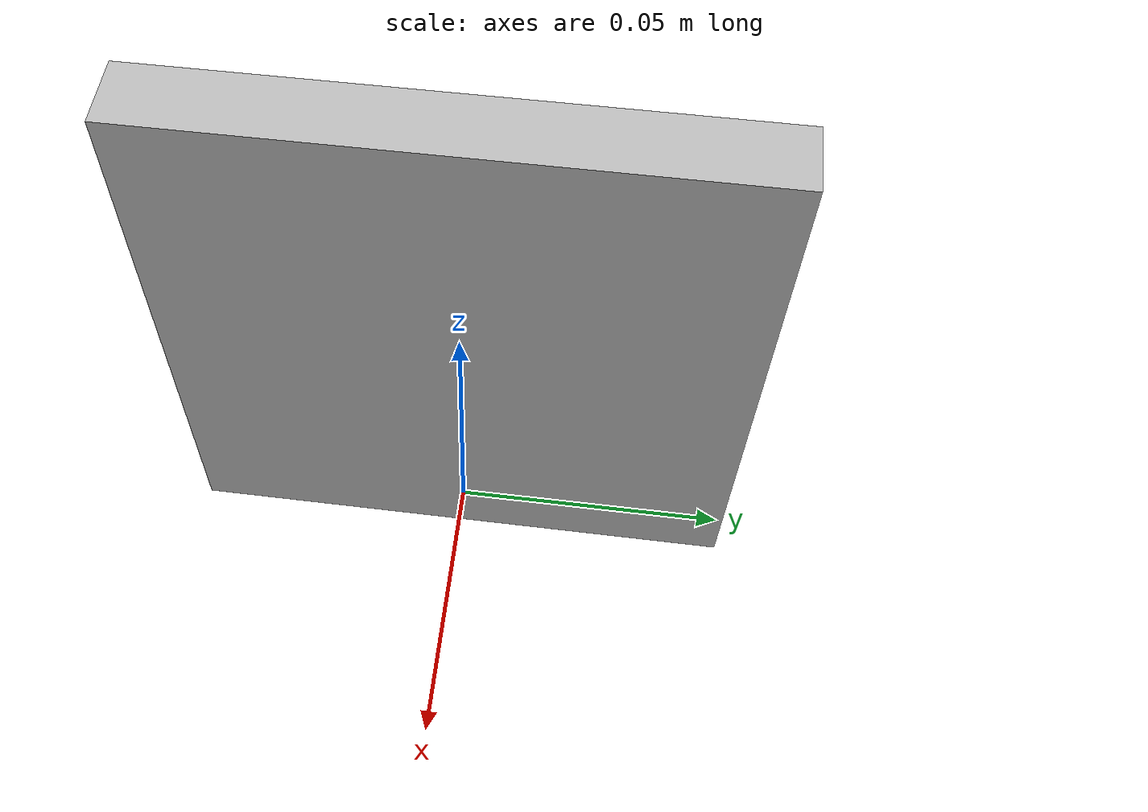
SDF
<?xml version="1.0" ?><sdf version="1.6">
  <model name="Marker0">
    <static>false</static>
    <link name="link">
      <inertial>
        <inertia>
          <ixx>0.05</ixx>
          <ixy>0</ixy>
          <ixz>0</ixz>
          <iyy>0.05</iyy>
          <iyz>0</iyz>
          <izz>0.05</izz>
        </inertia>
        <mass>0.5</mass>
      </inertial>
      <collision name="collision">
        <geometry>
          <mesh>
            <uri>model://marker0/meshes/Marker0.dae</uri>
            <scale>1.2 0.2 0.2</scale>
          </mesh>
        </geometry>
      </collision>
      <visual name="visual">
        <geometry>
          <mesh>
            <uri>model://marker0/meshes/Marker0.dae</uri>
            <scale>1.2 0.2 0.2</scale>
          </mesh>
        </geometry>
      </visual>
    </link>
  </model>
</sdf>
